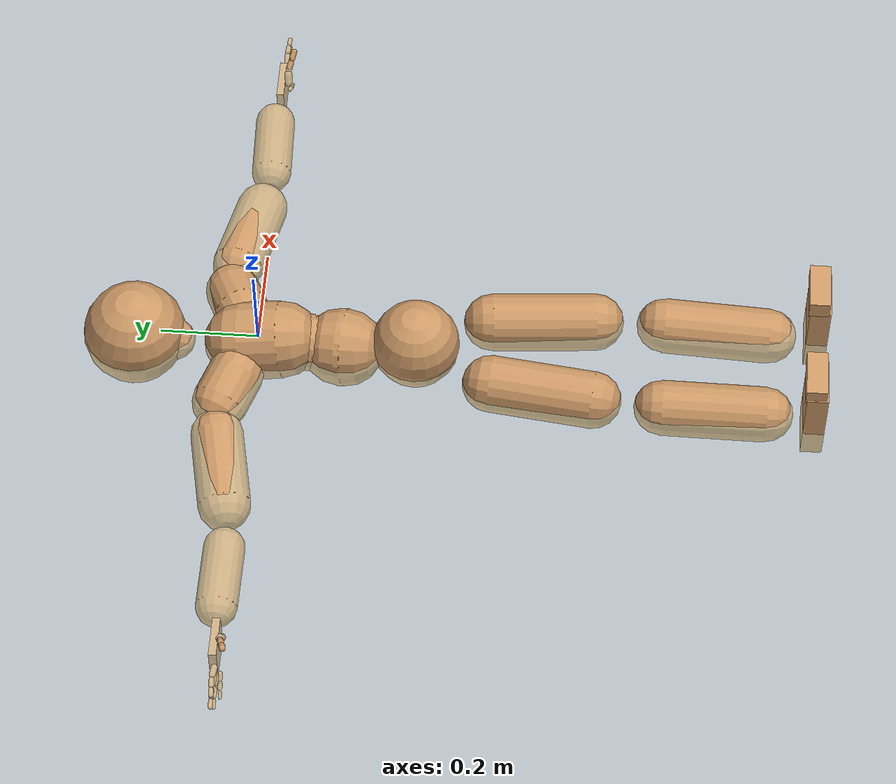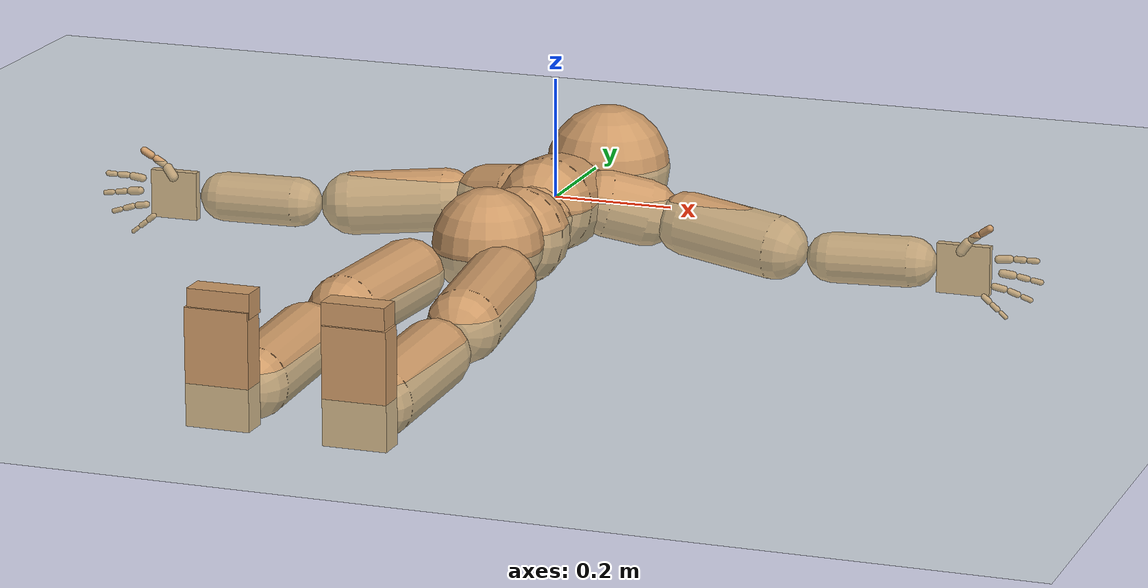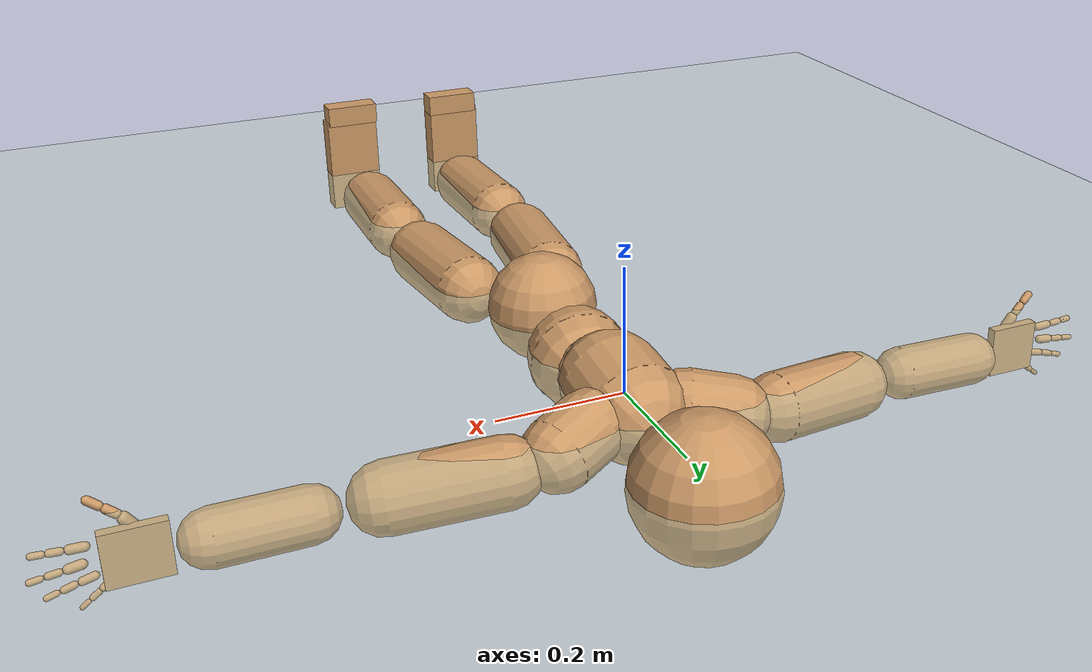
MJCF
<?xml version='1.0' encoding='utf-8'?>
<mujoco model="smplx_mapped_s99">
  <compiler coordinate="local" />
  <default>
    <joint damping="0.0" armature="0.01" stiffness="0.0" limited="true" />
    <geom conaffinity="1" condim="3" contype="7" margin="0.001" rgba="0.8 0.6 .4 1" />
  </default>
  <asset>
    <texture type="skybox" builtin="gradient" rgb1=".4 .5 .6" rgb2="0 0 0" width="100" height="100" />
    <texture builtin="flat" height="1278" mark="cross" markrgb="1 1 1" name="texgeom" random="0.01" rgb1="0.8 0.6 0.4" rgb2="0.8 0.6 0.4" type="cube" width="127" />
    <texture builtin="checker" height="100" name="texplane" rgb1="0 0 0" rgb2="0.8 0.8 0.8" type="2d" width="100" />
    <material name="MatPlane" reflectance="0.5" shininess="1" specular="1" texrepeat="60 60" texture="texplane" />
    <material name="geom" texture="texgeom" texuniform="true" />
  </asset>
  <worldbody>
    <light cutoff="100" diffuse="1 1 1" dir="-0 0 -1.3" directional="true" exponent="1" pos="0 0 1.3" specular=".1 .1 .1" />
    <geom conaffinity="1" condim="3" name="floor" pos="0 0 0" rgba="0.8 0.9 0.8 1" size="100 100 .2" type="plane" material="MatPlane" />
    <body name="Pelvis" pos="0.0006 -0.3238 0.0058">
      <freejoint name="Pelvis" />
      <geom type="sphere" contype="1" conaffinity="1" density="4629.6296296296305" size="0.09" pos="0.0000 0.0000 0.0000" name="Pelvis" />
      <body name="L_Hip" pos="0.0700 -0.0824 -0.0157">
        <joint name="L_Hip_x" type="hinge" pos="0 0 0" axis="1 0 0" stiffness="800" damping="80" armature="0.02" range="-180.00 180.00" />
        <joint name="L_Hip_y" type="hinge" pos="0 0 0" axis="0 1 0" stiffness="800" damping="80" armature="0.02" range="-180.00 180.00" />
        <joint name="L_Hip_z" type="hinge" pos="0 0 0" axis="0 0 1" stiffness="800" damping="80" armature="0.02" range="-180.00 180.00" />
        <geom type="capsule" contype="1" conaffinity="1" density="2040.816327" fromto="0.0066 -0.0704 -0.0027 0.0264 -0.2815 -0.0106" size="0.059" />
        <body name="L_Knee" pos="0.0331 -0.3518 -0.0133">
          <joint name="L_Knee_x" type="hinge" pos="0 0 0" axis="1 0 0" stiffness="800" damping="80" armature="0.02" range="-180.00 180.00" />
          <joint name="L_Knee_y" type="hinge" pos="0 0 0" axis="0 1 0" stiffness="800" damping="80" armature="0.02" range="-180.00 180.00" />
          <joint name="L_Knee_z" type="hinge" pos="0 0 0" axis="0 0 1" stiffness="800" damping="80" armature="0.02" range="-180.00 180.00" />
          <geom type="capsule" contype="1" conaffinity="1" density="1234.567901" fromto="-0.0017 -0.0721 -0.0032 -0.0069 -0.2885 -0.0129" size="0.0564" />
          <body name="L_Ankle" pos="-0.0086 -0.3606 -0.0161">
            <joint name="L_Ankle_x" type="hinge" pos="0 0 0" axis="1 0 0" stiffness="800" damping="80" armature="0.02" range="-180.00 180.00" />
            <joint name="L_Ankle_y" type="hinge" pos="0 0 0" axis="0 1 0" stiffness="800" damping="80" armature="0.02" range="-180.00 180.00" />
            <joint name="L_Ankle_z" type="hinge" pos="0 0 0" axis="0 0 1" stiffness="800" damping="80" armature="0.02" range="-180.00 180.00" />
            <geom type="box" contype="1" conaffinity="1" density="1000" pos="0.0115 -0.0234 0.0566" size="0.0502 0.0216 0.0909" quat="1.0000 0.0000 0.0000 0.0000" />
            <body name="L_Toe" pos="0.0203 -0.0424 0.1048">
              <joint name="L_Toe_x" type="hinge" pos="0 0 0" axis="1 0 0" stiffness="500" damping="50" armature="0.02" range="-180.00 180.00" />
              <joint name="L_Toe_y" type="hinge" pos="0 0 0" axis="0 1 0" stiffness="500" damping="50" armature="0.02" range="-180.00 180.00" />
              <joint name="L_Toe_z" type="hinge" pos="0 0 0" axis="0 0 1" stiffness="500" damping="50" armature="0.02" range="-180.00 180.00" />
              <geom type="box" contype="1" conaffinity="1" density="1000" pos="-0.0115 0.0227 0.0576" size="0.0493 0.0209 0.0194" quat="1.0000 0.0000 0.0000 0.0000" />
            </body>
          </body>
        </body>
      </body>
      <body name="R_Hip" pos="-0.0690 -0.0889 -0.0164">
        <joint name="R_Hip_x" type="hinge" pos="0 0 0" axis="1 0 0" stiffness="800" damping="80" armature="0.02" range="-180.00 180.00" />
        <joint name="R_Hip_y" type="hinge" pos="0 0 0" axis="0 1 0" stiffness="800" damping="80" armature="0.02" range="-180.00 180.00" />
        <joint name="R_Hip_z" type="hinge" pos="0 0 0" axis="0 0 1" stiffness="800" damping="80" armature="0.02" range="-180.00 180.00" />
        <geom type="capsule" contype="1" conaffinity="1" density="2040.816327" fromto="-0.0075 -0.0695 -0.0016 -0.0301 -0.2780 -0.0063" size="0.0588" />
        <body name="R_Knee" pos="-0.0376 -0.3476 -0.0079">
          <joint name="R_Knee_x" type="hinge" pos="0 0 0" axis="1 0 0" stiffness="800" damping="80" armature="0.02" range="-180.00 180.00" />
          <joint name="R_Knee_y" type="hinge" pos="0 0 0" axis="0 1 0" stiffness="800" damping="80" armature="0.02" range="-180.00 180.00" />
          <joint name="R_Knee_z" type="hinge" pos="0 0 0" axis="0 0 1" stiffness="800" damping="80" armature="0.02" range="-180.00 180.00" />
          <geom type="capsule" contype="1" conaffinity="1" density="1234.567901" fromto="0.0008 -0.0705 -0.0024 0.0032 -0.2818 -0.0097" size="0.0564" />
          <body name="R_Ankle" pos="0.0040 -0.3523 -0.0121">
            <joint name="R_Ankle_x" type="hinge" pos="0 0 0" axis="1 0 0" stiffness="800" damping="80" armature="0.02" range="-180.00 180.00" />
            <joint name="R_Ankle_y" type="hinge" pos="0 0 0" axis="0 1 0" stiffness="800" damping="80" armature="0.02" range="-180.00 180.00" />
            <joint name="R_Ankle_z" type="hinge" pos="0 0 0" axis="0 0 1" stiffness="800" damping="80" armature="0.02" range="-180.00 180.00" />
            <geom type="box" contype="1" conaffinity="1" density="1000" pos="-0.0091 -0.0250 0.0535" size="0.0502 0.0216 0.0909" quat="1.0000 0.0000 0.0000 0.0000" />
            <body name="R_Toe" pos="-0.0161 -0.0458 0.0984">
              <joint name="R_Toe_x" type="hinge" pos="0 0 0" axis="1 0 0" stiffness="500" damping="50" armature="0.02" range="-180.00 180.00" />
              <joint name="R_Toe_y" type="hinge" pos="0 0 0" axis="0 1 0" stiffness="500" damping="50" armature="0.02" range="-180.00 180.00" />
              <joint name="R_Toe_z" type="hinge" pos="0 0 0" axis="0 0 1" stiffness="500" damping="50" armature="0.02" range="-180.00 180.00" />
              <geom type="box" contype="1" conaffinity="1" density="1000" pos="0.0091 0.0243 0.0545" size="0.0493 0.0209 0.0194" quat="1.0000 0.0000 0.0000 0.0000" />
            </body>
          </body>
        </body>
      </body>
      <body name="Torso" pos="-0.0055 0.0941 -0.0224">
        <joint name="Torso_x" type="hinge" pos="0 0 0" axis="1 0 0" stiffness="1000" damping="100" armature="0.02" range="-180.00 180.00" />
        <joint name="Torso_y" type="hinge" pos="0 0 0" axis="0 1 0" stiffness="1000" damping="100" armature="0.02" range="-180.00 180.00" />
        <joint name="Torso_z" type="hinge" pos="0 0 0" axis="0 0 1" stiffness="1000" damping="100" armature="0.02" range="-180.00 180.00" />
        <geom type="capsule" contype="1" conaffinity="1" density="1100" fromto="0.0044 0.0500 -0.0038 0.0054 0.0611 -0.0047" size="0.08" />
        <body name="Spine" pos="0.0097 0.1112 -0.0085">
          <joint name="Spine_x" type="hinge" pos="0 0 0" axis="1 0 0" stiffness="1000" damping="100" armature="0.02" range="-180.00 180.00" />
          <joint name="Spine_y" type="hinge" pos="0 0 0" axis="0 1 0" stiffness="1000" damping="100" armature="0.02" range="-180.00 180.00" />
          <joint name="Spine_z" type="hinge" pos="0 0 0" axis="0 0 1" stiffness="1000" damping="100" armature="0.02" range="-180.00 180.00" />
          <geom type="capsule" contype="1" conaffinity="1" density="1100" fromto="-0.0022 0.0197 0.0113 -0.0027 0.0241 0.0139" size="0.06" />
          <body name="Chest" pos="-0.0048 0.0438 0.0252">
            <joint name="Chest_x" type="hinge" pos="0 0 0" axis="1 0 0" stiffness="1000" damping="100" armature="0.02" range="-180.00 180.00" />
            <joint name="Chest_y" type="hinge" pos="0 0 0" axis="0 1 0" stiffness="1000" damping="100" armature="0.02" range="-180.00 180.00" />
            <joint name="Chest_z" type="hinge" pos="0 0 0" axis="0 0 1" stiffness="1000" damping="100" armature="0.02" range="-180.00 180.00" />
            <geom type="capsule" contype="1" conaffinity="1" density="1100" fromto="-0.0007 0.0265 -0.0037 -0.0026 0.1060 -0.0148" size="0.08" />
            <body name="Neck" pos="-0.0063 0.1840 -0.0296">
              <joint name="Neck_x" type="hinge" pos="0 0 0" axis="1 0 0" stiffness="500" damping="50" armature="0.02" range="-180.00 180.00" />
              <joint name="Neck_y" type="hinge" pos="0 0 0" axis="0 1 0" stiffness="500" damping="50" armature="0.02" range="-180.00 180.00" />
              <joint name="Neck_z" type="hinge" pos="0 0 0" axis="0 0 1" stiffness="500" damping="50" armature="0.02" range="-180.00 180.00" />
              <geom type="capsule" contype="1" conaffinity="1" density="1000" fromto="0.0041 0.0659 0.0083 0.0050 0.0805 0.0101" size="0.0437" />
              <body name="Head" pos="0.0091 0.1464 0.0184">
                <joint name="Head_x" type="hinge" pos="0 0 0" axis="1 0 0" stiffness="500" damping="50" armature="0.02" range="-180.00 180.00" />
                <joint name="Head_y" type="hinge" pos="0 0 0" axis="0 1 0" stiffness="500" damping="50" armature="0.02" range="-180.00 180.00" />
                <joint name="Head_z" type="hinge" pos="0 0 0" axis="0 0 1" stiffness="500" damping="50" armature="0.02" range="-180.00 180.00" />
                <geom type="sphere" contype="1" conaffinity="1" density="1000" size="0.1054" pos="0.0000 0.0000 0.0000" name="Head" />
              </body>
            </body>
            <body name="L_Thorax" pos="0.0539 0.1087 -0.0100">
              <joint name="L_Thorax_x" type="hinge" pos="0 0 0" axis="1 0 0" stiffness="500" damping="50" armature="0.02" range="-180.00 180.00" />
              <joint name="L_Thorax_y" type="hinge" pos="0 0 0" axis="0 1 0" stiffness="500" damping="50" armature="0.02" range="-180.00 180.00" />
              <joint name="L_Thorax_z" type="hinge" pos="0 0 0" axis="0 0 1" stiffness="500" damping="50" armature="0.02" range="-180.00 180.00" />
              <geom type="capsule" contype="1" conaffinity="1" density="1000" fromto="0.0200 0.0084 -0.0056 0.0800 0.0338 -0.0223" size="0.0564" />
              <body name="L_Shoulder" pos="0.1000 0.0422 -0.0278">
                <joint name="L_Shoulder_x" type="hinge" pos="0 0 0" axis="1 0 0" stiffness="500" damping="50" armature="0.02" range="-180.00 180.00" />
                <joint name="L_Shoulder_y" type="hinge" pos="0 0 0" axis="0 1 0" stiffness="500" damping="50" armature="0.02" range="-180.00 180.00" />
                <joint name="L_Shoulder_z" type="hinge" pos="0 0 0" axis="0 0 1" stiffness="500" damping="50" armature="0.02" range="-180.00 180.00" />
                <geom type="capsule" contype="1" conaffinity="1" density="1000" fromto="0.0547 -0.0112 -0.0056 0.2187 -0.0447 -0.0224" size="0.0533" />
                <body name="L_Elbow" pos="0.2734 -0.0559 -0.0280">
                  <joint name="L_Elbow_x" type="hinge" pos="0 0 0" axis="1 0 0" stiffness="500" damping="50" armature="0.02" range="-180.00 180.00" />
                  <joint name="L_Elbow_y" type="hinge" pos="0 0 0" axis="0 1 0" stiffness="500" damping="50" armature="0.02" range="-180.00 180.00" />
                  <joint name="L_Elbow_z" type="hinge" pos="0 0 0" axis="0 0 1" stiffness="500" damping="50" armature="0.02" range="-180.00 180.00" />
                  <geom type="capsule" contype="1" conaffinity="1" density="1000" fromto="0.0445 0.0014 0.0011 0.1778 0.0056 0.0043" size="0.0418" />
                  <body name="L_Wrist" pos="0.2223 0.0070 0.0053">
                    <joint name="L_Wrist_x" type="hinge" pos="0 0 0" axis="1 0 0" stiffness="300" damping="30" armature="0.02" range="-180.0000 180.0000" />
                    <joint name="L_Wrist_y" type="hinge" pos="0 0 0" axis="0 1 0" stiffness="300" damping="30" armature="0.02" range="-180.0000 180.0000" />
                    <joint name="L_Wrist_z" type="hinge" pos="0 0 0" axis="0 0 1" stiffness="300" damping="30" armature="0.02" range="-180.0000 180.0000" />
                    <geom type="box" contype="1" conaffinity="1" density="1000" pos="0.0456 -0.0084 -0.0022" size="0.0444 0.0076 0.0414" quat="1.0000 0.0000 0.0000 0.0000" />
                    <body name="L_Index1" pos="0.0982 -0.0148 0.0204">
                      <joint name="L_Index1_x" type="hinge" pos="0 0 0" axis="1 0 0" stiffness="100" damping="10" armature="0.02" range="-5.6250 5.6250" />
                      <joint name="L_Index1_y" type="hinge" pos="0 0 0" axis="0 1 0" stiffness="100" damping="10" armature="0.02" range="-5.6250 5.6250" />
                      <joint name="L_Index1_z" type="hinge" pos="0 0 0" axis="0 0 1" stiffness="100" damping="10" armature="0.02" range="-55.6250 55.6250" />
                      <geom type="capsule" contype="1" conaffinity="1" density="1000" fromto="0.0062 0.0006 0.0006 0.0247 0.0022 0.0022" size="0.0065" />
                      <body name="L_Index2" pos="0.0308 0.0028 0.0028">
                        <joint name="L_Index2_x" type="hinge" pos="0 0 0" axis="1 0 0" stiffness="100" damping="10" armature="0.02" range="-5.6250 5.6250" />
                        <joint name="L_Index2_y" type="hinge" pos="0 0 0" axis="0 1 0" stiffness="100" damping="10" armature="0.02" range="-5.6250 5.6250" />
                        <joint name="L_Index2_z" type="hinge" pos="0 0 0" axis="0 0 1" stiffness="100" damping="10" armature="0.02" range="-55.6250 55.6250" />
                        <geom type="capsule" contype="1" conaffinity="1" density="1000" fromto="0.0044 -0.0003 0.0001 0.0174 -0.0011 0.0004" size="0.0053" />
                        <body name="L_Index3" pos="0.0218 -0.0014 0.0005">
                          <joint name="L_Index3_x" type="hinge" pos="0 0 0" axis="1 0 0" stiffness="100" damping="10" armature="0.02" range="-5.6250 5.6250" />
                          <joint name="L_Index3_y" type="hinge" pos="0 0 0" axis="0 1 0" stiffness="100" damping="10" armature="0.02" range="-5.6250 5.6250" />
                          <joint name="L_Index3_z" type="hinge" pos="0 0 0" axis="0 0 1" stiffness="100" damping="10" armature="0.02" range="-90.0000 5.6250" />
                          <geom type="capsule" contype="1" conaffinity="1" density="1000" fromto="0.0045 -0.0003 0.0001 0.0173 -0.0011 0.0004" size="0.0047" />
                        </body>
                      </body>
                    </body>
                    <body name="L_Middle1" pos="0.1049 -0.0122 -0.0016">
                      <joint name="L_Middle1_x" type="hinge" pos="0 0 0" axis="1 0 0" stiffness="100" damping="10" armature="0.02" range="-5.6250 5.6250" />
                      <joint name="L_Middle1_y" type="hinge" pos="0 0 0" axis="0 1 0" stiffness="100" damping="10" armature="0.02" range="-5.6250 5.6250" />
                      <joint name="L_Middle1_z" type="hinge" pos="0 0 0" axis="0 0 1" stiffness="100" damping="10" armature="0.02" range="-55.6250 55.6250" />
                      <geom type="capsule" contype="1" conaffinity="1" density="1000" fromto="0.0059 0.0003 -0.0007 0.0234 0.0011 -0.0028" size="0.0067" />
                      <body name="L_Middle2" pos="0.0293 0.0014 -0.0036">
                        <joint name="L_Middle2_x" type="hinge" pos="0 0 0" axis="1 0 0" stiffness="100" damping="10" armature="0.02" range="-5.6250 5.6250" />
                        <joint name="L_Middle2_y" type="hinge" pos="0 0 0" axis="0 1 0" stiffness="100" damping="10" armature="0.02" range="-5.6250 5.6250" />
                        <joint name="L_Middle2_z" type="hinge" pos="0 0 0" axis="0 0 1" stiffness="100" damping="10" armature="0.02" range="-55.6250 55.6250" />
                        <geom type="capsule" contype="1" conaffinity="1" density="1000" fromto="0.0046 -0.0001 -0.0007 0.0182 -0.0005 -0.0028" size="0.0050" />
                        <body name="L_Middle3" pos="0.0228 -0.0006 -0.0035">
                          <joint name="L_Middle3_x" type="hinge" pos="0 0 0" axis="1 0 0" stiffness="100" damping="10" armature="0.02" range="-5.6250 5.6250" />
                          <joint name="L_Middle3_y" type="hinge" pos="0 0 0" axis="0 1 0" stiffness="100" damping="10" armature="0.02" range="-5.6250 5.6250" />
                          <joint name="L_Middle3_z" type="hinge" pos="0 0 0" axis="0 0 1" stiffness="100" damping="10" armature="0.02" range="-90.0000 5.6250" />
                          <geom type="capsule" contype="1" conaffinity="1" density="1000" fromto="0.0047 -0.0001 -0.0007 0.0181 -0.0005 -0.0028" size="0.0045" />
                        </body>
                      </body>
                    </body>
                    <body name="L_Pinky1" pos="0.0800 -0.0195 -0.0401">
                      <joint name="L_Pinky1_x" type="hinge" pos="0 0 0" axis="1 0 0" stiffness="100" damping="10" armature="0.02" range="-5.6250 5.6250" />
                      <joint name="L_Pinky1_y" type="hinge" pos="0 0 0" axis="0 1 0" stiffness="100" damping="10" armature="0.02" range="-5.6250 5.6250" />
                      <joint name="L_Pinky1_z" type="hinge" pos="0 0 0" axis="0 0 1" stiffness="100" damping="10" armature="0.02" range="-55.6250 55.6250" />
                      <geom type="capsule" contype="1" conaffinity="1" density="1000" fromto="0.0029 -0.0001 -0.0024 0.0115 -0.0004 -0.0095" size="0.0050" />
                      <body name="L_Pinky2" pos="0.0143 -0.0005 -0.0119">
                        <joint name="L_Pinky2_x" type="hinge" pos="0 0 0" axis="1 0 0" stiffness="100" damping="10" armature="0.02" range="-5.6250 5.6250" />
                        <joint name="L_Pinky2_y" type="hinge" pos="0 0 0" axis="0 1 0" stiffness="100" damping="10" armature="0.02" range="-5.6250 5.6250" />
                        <joint name="L_Pinky2_z" type="hinge" pos="0 0 0" axis="0 0 1" stiffness="100" damping="10" armature="0.02" range="-55.6250 55.6250" />
                        <geom type="capsule" contype="1" conaffinity="1" density="1000" fromto="0.0029 -0.0002 -0.0023 0.0116 -0.0007 -0.0093" size="0.0045" />
                        <body name="L_Pinky3" pos="0.0145 -0.0009 -0.0116">
                          <joint name="L_Pinky3_x" type="hinge" pos="0 0 0" axis="1 0 0" stiffness="100" damping="10" armature="0.02" range="-5.6250 5.6250" />
                          <joint name="L_Pinky3_y" type="hinge" pos="0 0 0" axis="0 1 0" stiffness="100" damping="10" armature="0.02" range="-5.6250 5.6250" />
                          <joint name="L_Pinky3_z" type="hinge" pos="0 0 0" axis="0 0 1" stiffness="100" damping="10" armature="0.02" range="-90.0000 5.6250" />
                          <geom type="capsule" contype="1" conaffinity="1" density="1000" fromto="0.0031 -0.0002 -0.0025 0.0114 -0.0007 -0.0091" size="0.0036" />
                        </body>
                      </body>
                    </body>
                    <body name="L_Ring1" pos="0.0931 -0.0147 -0.0242">
                      <joint name="L_Ring1_x" type="hinge" pos="0 0 0" axis="1 0 0" stiffness="100" damping="10" armature="0.02" range="-5.6250 5.6250" />
                      <joint name="L_Ring1_y" type="hinge" pos="0 0 0" axis="0 1 0" stiffness="100" damping="10" armature="0.02" range="-5.6250 5.6250" />
                      <joint name="L_Ring1_z" type="hinge" pos="0 0 0" axis="0 0 1" stiffness="100" damping="10" armature="0.02" range="-55.6250 55.6250" />
                      <geom type="capsule" contype="1" conaffinity="1" density="1000" fromto="0.0054 0.0003 -0.0010 0.0215 0.0013 -0.0041" size="0.0057" />
                      <body name="L_Ring2" pos="0.0268 0.0016 -0.0052">
                        <joint name="L_Ring2_x" type="hinge" pos="0 0 0" axis="1 0 0" stiffness="100" damping="10" armature="0.02" range="-5.6250 5.6250" />
                        <joint name="L_Ring2_y" type="hinge" pos="0 0 0" axis="0 1 0" stiffness="100" damping="10" armature="0.02" range="-5.6250 5.6250" />
                        <joint name="L_Ring2_z" type="hinge" pos="0 0 0" axis="0 0 1" stiffness="100" damping="10" armature="0.02" range="-55.6250 55.6250" />
                        <geom type="capsule" contype="1" conaffinity="1" density="1000" fromto="0.0044 -0.0002 -0.0014 0.0176 -0.0008 -0.0056" size="0.0051" />
                        <body name="L_Ring3" pos="0.0219 -0.0010 -0.0070">
                          <joint name="L_Ring3_x" type="hinge" pos="0 0 0" axis="1 0 0" stiffness="100" damping="10" armature="0.02" range="-5.6250 5.6250" />
                          <joint name="L_Ring3_y" type="hinge" pos="0 0 0" axis="0 1 0" stiffness="100" damping="10" armature="0.02" range="-5.6250 5.6250" />
                          <joint name="L_Ring3_z" type="hinge" pos="0 0 0" axis="0 0 1" stiffness="100" damping="10" armature="0.02" range="-90.0000 5.6250" />
                          <geom type="capsule" contype="1" conaffinity="1" density="1000" fromto="0.0046 -0.0002 -0.0015 0.0174 -0.0008 -0.0056" size="0.0043" />
                        </body>
                      </body>
                    </body>
                    <body name="L_Thumb1" pos="0.0405 -0.0226 0.0263">
                      <joint name="L_Thumb1_x" type="hinge" pos="0 0 0" axis="1 0 0" stiffness="100" damping="10" armature="0.02" range="-55.6250 55.6250" />
                      <joint name="L_Thumb1_y" type="hinge" pos="0 0 0" axis="0 1 0" stiffness="100" damping="10" armature="0.02" range="-55.6250 55.6250" />
                      <joint name="L_Thumb1_z" type="hinge" pos="0 0 0" axis="0 0 1" stiffness="100" damping="10" armature="0.02" range="-55.6250 55.6250" />
                      <geom type="capsule" contype="1" conaffinity="1" density="1000" fromto="0.0033 0.0002 0.0047 0.0133 0.0008 0.0188" size="0.0086" />
                      <body name="L_Thumb2" pos="0.0166 0.0010 0.0235">
                        <joint name="L_Thumb2_x" type="hinge" pos="0 0 0" axis="1 0 0" stiffness="100" damping="10" armature="0.02" range="-5.6250 5.6250" />
                        <joint name="L_Thumb2_y" type="hinge" pos="0 0 0" axis="0 1 0" stiffness="100" damping="10" armature="0.02" range="-5.6250 5.6250" />
                        <joint name="L_Thumb2_z" type="hinge" pos="0 0 0" axis="0 0 1" stiffness="100" damping="10" armature="0.02" range="-5.6250 5.6250" />
                        <geom type="capsule" contype="1" conaffinity="1" density="1000" fromto="0.0039 -0.0011 0.0028 0.0157 -0.0046 0.0112" size="0.0065" />
                        <body name="L_Thumb3" pos="0.0196 -0.0057 0.0141">
                          <joint name="L_Thumb3_x" type="hinge" pos="0 0 0" axis="1 0 0" stiffness="100" damping="10" armature="0.02" range="-5.6250 5.6250" />
                          <joint name="L_Thumb3_y" type="hinge" pos="0 0 0" axis="0 1 0" stiffness="100" damping="10" armature="0.02" range="-5.6250 5.6250" />
                          <joint name="L_Thumb3_z" type="hinge" pos="0 0 0" axis="0 0 1" stiffness="100" damping="10" armature="0.02" range="-90.0000 5.6250" />
                          <geom type="capsule" contype="1" conaffinity="1" density="1000" fromto="0.0032 -0.0009 0.0023 0.0164 -0.0048 0.0117" size="0.0062" />
                        </body>
                      </body>
                    </body>
                  </body>
                </body>
              </body>
            </body>
            <body name="R_Thorax" pos="-0.0576 0.1049 -0.0160">
              <joint name="R_Thorax_x" type="hinge" pos="0 0 0" axis="1 0 0" stiffness="500" damping="50" armature="0.02" range="-180.00 180.00" />
              <joint name="R_Thorax_y" type="hinge" pos="0 0 0" axis="0 1 0" stiffness="500" damping="50" armature="0.02" range="-180.00 180.00" />
              <joint name="R_Thorax_z" type="hinge" pos="0 0 0" axis="0 0 1" stiffness="500" damping="50" armature="0.02" range="-180.00 180.00" />
              <geom type="capsule" contype="1" conaffinity="1" density="1000" fromto="-0.0217 0.0090 -0.0043 -0.0866 0.0359 -0.0170" size="0.0576" />
              <body name="R_Shoulder" pos="-0.1083 0.0449 -0.0213">
                <joint name="R_Shoulder_x" type="hinge" pos="0 0 0" axis="1 0 0" stiffness="500" damping="50" armature="0.02" range="-180.00 180.00" />
                <joint name="R_Shoulder_y" type="hinge" pos="0 0 0" axis="0 1 0" stiffness="500" damping="50" armature="0.02" range="-180.00 180.00" />
                <joint name="R_Shoulder_z" type="hinge" pos="0 0 0" axis="0 0 1" stiffness="500" damping="50" armature="0.02" range="-180.00 180.00" />
                <geom type="capsule" contype="1" conaffinity="1" density="1000" fromto="-0.0524 -0.0103 -0.0042 -0.2096 -0.0410 -0.0167" size="0.0538" />
                <body name="R_Elbow" pos="-0.2620 -0.0513 -0.0209">
                  <joint name="R_Elbow_x" type="hinge" pos="0 0 0" axis="1 0 0" stiffness="500" damping="50" armature="0.02" range="-180.00 180.00" />
                  <joint name="R_Elbow_y" type="hinge" pos="0 0 0" axis="0 1 0" stiffness="500" damping="50" armature="0.02" range="-180.00 180.00" />
                  <joint name="R_Elbow_z" type="hinge" pos="0 0 0" axis="0 0 1" stiffness="500" damping="50" armature="0.02" range="-180.00 180.00" />
                  <geom type="capsule" contype="1" conaffinity="1" density="1000" fromto="-0.0446 0.0005 -0.0007 -0.1784 0.0022 -0.0030" size="0.042" />
                  <body name="R_Wrist" pos="-0.2230 0.0027 -0.0037">
                    <joint name="R_Wrist_x" type="hinge" pos="0 0 0" axis="1 0 0" stiffness="300" damping="30" armature="0.02" range="-180.0000 180.0000" />
                    <joint name="R_Wrist_y" type="hinge" pos="0 0 0" axis="0 1 0" stiffness="300" damping="30" armature="0.02" range="-180.0000 180.0000" />
                    <joint name="R_Wrist_z" type="hinge" pos="0 0 0" axis="0 0 1" stiffness="300" damping="30" armature="0.02" range="-180.0000 180.0000" />
                    <geom type="box" contype="1" conaffinity="1" density="1000" pos="-0.0449 -0.0080 -0.0014" size="0.0416 0.0078 0.0414" quat="1.0000 0.0000 0.0000 0.0000" />
                    <body name="R_Index1" pos="-0.0971 -0.0139 0.0219">
                      <joint name="R_Index1_x" type="hinge" pos="0 0 0" axis="1 0 0" stiffness="100" damping="10" armature="0.02" range="-5.6250 5.6250" />
                      <joint name="R_Index1_y" type="hinge" pos="0 0 0" axis="0 1 0" stiffness="100" damping="10" armature="0.02" range="-5.6250 5.6250" />
                      <joint name="R_Index1_z" type="hinge" pos="0 0 0" axis="0 0 1" stiffness="100" damping="10" armature="0.02" range="-55.6250 55.6250" />
                      <geom type="capsule" contype="1" conaffinity="1" density="1000" fromto="-0.0062 0.0006 0.0006 -0.0247 0.0022 0.0022" size="0.0065" />
                      <body name="R_Index2" pos="-0.0308 0.0028 0.0028">
                        <joint name="R_Index2_x" type="hinge" pos="0 0 0" axis="1 0 0" stiffness="100" damping="10" armature="0.02" range="-5.6250 5.6250" />
                        <joint name="R_Index2_y" type="hinge" pos="0 0 0" axis="0 1 0" stiffness="100" damping="10" armature="0.02" range="-5.6250 5.6250" />
                        <joint name="R_Index2_z" type="hinge" pos="0 0 0" axis="0 0 1" stiffness="100" damping="10" armature="0.02" range="-55.6250 55.6250" />
                        <geom type="capsule" contype="1" conaffinity="1" density="1000" fromto="-0.0044 -0.0003 0.0001 -0.0174 -0.0011 0.0004" size="0.0053" />
                        <body name="R_Index3" pos="-0.0218 -0.0014 0.0005">
                          <joint name="R_Index3_x" type="hinge" pos="0 0 0" axis="1 0 0" stiffness="100" damping="10" armature="0.02" range="-5.6250 5.6250" />
                          <joint name="R_Index3_y" type="hinge" pos="0 0 0" axis="0 1 0" stiffness="100" damping="10" armature="0.02" range="-5.6250 5.6250" />
                          <joint name="R_Index3_z" type="hinge" pos="0 0 0" axis="0 0 1" stiffness="100" damping="10" armature="0.02" range="-5.6250 90.0000" />
                          <geom type="capsule" contype="1" conaffinity="1" density="1000" fromto="-0.0049 -0.0003 0.0001 -0.0169 -0.0011 0.0004" size="0.0048" />
                        </body>
                      </body>
                    </body>
                    <body name="R_Middle1" pos="-0.1038 -0.0114 -0.0001">
                      <joint name="R_Middle1_x" type="hinge" pos="0 0 0" axis="1 0 0" stiffness="100" damping="10" armature="0.02" range="-5.6250 5.6250" />
                      <joint name="R_Middle1_y" type="hinge" pos="0 0 0" axis="0 1 0" stiffness="100" damping="10" armature="0.02" range="-5.6250 5.6250" />
                      <joint name="R_Middle1_z" type="hinge" pos="0 0 0" axis="0 0 1" stiffness="100" damping="10" armature="0.02" range="-55.6250 55.6250" />
                      <geom type="capsule" contype="1" conaffinity="1" density="1000" fromto="-0.0059 0.0003 -0.0007 -0.0234 0.0011 -0.0028" size="0.0067" />
                      <body name="R_Middle2" pos="-0.0293 0.0014 -0.0036">
                        <joint name="R_Middle2_x" type="hinge" pos="0 0 0" axis="1 0 0" stiffness="100" damping="10" armature="0.02" range="-5.6250 5.6250" />
                        <joint name="R_Middle2_y" type="hinge" pos="0 0 0" axis="0 1 0" stiffness="100" damping="10" armature="0.02" range="-5.6250 5.6250" />
                        <joint name="R_Middle2_z" type="hinge" pos="0 0 0" axis="0 0 1" stiffness="100" damping="10" armature="0.02" range="-55.6250 55.6250" />
                        <geom type="capsule" contype="1" conaffinity="1" density="1000" fromto="-0.0046 -0.0001 -0.0007 -0.0182 -0.0005 -0.0028" size="0.0050" />
                        <body name="R_Middle3" pos="-0.0228 -0.0006 -0.0035">
                          <joint name="R_Middle3_x" type="hinge" pos="0 0 0" axis="1 0 0" stiffness="100" damping="10" armature="0.02" range="-5.6250 5.6250" />
                          <joint name="R_Middle3_y" type="hinge" pos="0 0 0" axis="0 1 0" stiffness="100" damping="10" armature="0.02" range="-5.6250 5.6250" />
                          <joint name="R_Middle3_z" type="hinge" pos="0 0 0" axis="0 0 1" stiffness="100" damping="10" armature="0.02" range="-5.6250 90.0000" />
                          <geom type="capsule" contype="1" conaffinity="1" density="1000" fromto="-0.0050 -0.0001 -0.0008 -0.0177 -0.0005 -0.0027" size="0.0045" />
                        </body>
                      </body>
                    </body>
                    <body name="R_Pinky1" pos="-0.0789 -0.0187 -0.0386">
                      <joint name="R_Pinky1_x" type="hinge" pos="0 0 0" axis="1 0 0" stiffness="100" damping="10" armature="0.02" range="-5.6250 5.6250" />
                      <joint name="R_Pinky1_y" type="hinge" pos="0 0 0" axis="0 1 0" stiffness="100" damping="10" armature="0.02" range="-5.6250 5.6250" />
                      <joint name="R_Pinky1_z" type="hinge" pos="0 0 0" axis="0 0 1" stiffness="100" damping="10" armature="0.02" range="-55.6250 55.6250" />
                      <geom type="capsule" contype="1" conaffinity="1" density="1000" fromto="-0.0029 -0.0001 -0.0024 -0.0115 -0.0004 -0.0095" size="0.0050" />
                      <body name="R_Pinky2" pos="-0.0143 -0.0005 -0.0119">
                        <joint name="R_Pinky2_x" type="hinge" pos="0 0 0" axis="1 0 0" stiffness="100" damping="10" armature="0.02" range="-5.6250 5.6250" />
                        <joint name="R_Pinky2_y" type="hinge" pos="0 0 0" axis="0 1 0" stiffness="100" damping="10" armature="0.02" range="-5.6250 5.6250" />
                        <joint name="R_Pinky2_z" type="hinge" pos="0 0 0" axis="0 0 1" stiffness="100" damping="10" armature="0.02" range="-55.6250 55.6250" />
                        <geom type="capsule" contype="1" conaffinity="1" density="1000" fromto="-0.0029 -0.0002 -0.0023 -0.0116 -0.0007 -0.0093" size="0.0045" />
                        <body name="R_Pinky3" pos="-0.0145 -0.0009 -0.0116">
                          <joint name="R_Pinky3_x" type="hinge" pos="0 0 0" axis="1 0 0" stiffness="100" damping="10" armature="0.02" range="-5.6250 5.6250" />
                          <joint name="R_Pinky3_y" type="hinge" pos="0 0 0" axis="0 1 0" stiffness="100" damping="10" armature="0.02" range="-5.6250 5.6250" />
                          <joint name="R_Pinky3_z" type="hinge" pos="0 0 0" axis="0 0 1" stiffness="100" damping="10" armature="0.02" range="-5.6250 90.0000" />
                          <geom type="capsule" contype="1" conaffinity="1" density="1000" fromto="-0.0033 -0.0002 -0.0026 -0.0112 -0.0007 -0.0089" size="0.0036" />
                        </body>
                      </body>
                    </body>
                    <body name="R_Ring1" pos="-0.0920 -0.0138 -0.0227">
                      <joint name="R_Ring1_x" type="hinge" pos="0 0 0" axis="1 0 0" stiffness="100" damping="10" armature="0.02" range="-5.6250 5.6250" />
                      <joint name="R_Ring1_y" type="hinge" pos="0 0 0" axis="0 1 0" stiffness="100" damping="10" armature="0.02" range="-5.6250 5.6250" />
                      <joint name="R_Ring1_z" type="hinge" pos="0 0 0" axis="0 0 1" stiffness="100" damping="10" armature="0.02" range="-55.6250 55.6250" />
                      <geom type="capsule" contype="1" conaffinity="1" density="1000" fromto="-0.0054 0.0003 -0.0010 -0.0215 0.0013 -0.0041" size="0.0057" />
                      <body name="R_Ring2" pos="-0.0268 0.0016 -0.0052">
                        <joint name="R_Ring2_x" type="hinge" pos="0 0 0" axis="1 0 0" stiffness="100" damping="10" armature="0.02" range="-5.6250 5.6250" />
                        <joint name="R_Ring2_y" type="hinge" pos="0 0 0" axis="0 1 0" stiffness="100" damping="10" armature="0.02" range="-5.6250 5.6250" />
                        <joint name="R_Ring2_z" type="hinge" pos="0 0 0" axis="0 0 1" stiffness="100" damping="10" armature="0.02" range="-55.6250 55.6250" />
                        <geom type="capsule" contype="1" conaffinity="1" density="1000" fromto="-0.0044 -0.0002 -0.0014 -0.0176 -0.0008 -0.0056" size="0.0051" />
                        <body name="R_Ring3" pos="-0.0219 -0.0010 -0.0070">
                          <joint name="R_Ring3_x" type="hinge" pos="0 0 0" axis="1 0 0" stiffness="100" damping="10" armature="0.02" range="-5.6250 5.6250" />
                          <joint name="R_Ring3_y" type="hinge" pos="0 0 0" axis="0 1 0" stiffness="100" damping="10" armature="0.02" range="-5.6250 5.6250" />
                          <joint name="R_Ring3_z" type="hinge" pos="0 0 0" axis="0 0 1" stiffness="100" damping="10" armature="0.02" range="-5.6250 90.0000" />
                          <geom type="capsule" contype="1" conaffinity="1" density="1000" fromto="-0.0048 -0.0002 -0.0015 -0.0171 -0.0008 -0.0055" size="0.0043" />
                        </body>
                      </body>
                    </body>
                    <body name="R_Thumb1" pos="-0.0394 -0.0217 0.0278">
                      <joint name="R_Thumb1_x" type="hinge" pos="0 0 0" axis="1 0 0" stiffness="100" damping="10" armature="0.02" range="-55.6250 55.6250" />
                      <joint name="R_Thumb1_y" type="hinge" pos="0 0 0" axis="0 1 0" stiffness="100" damping="10" armature="0.02" range="-55.6250 55.6250" />
                      <joint name="R_Thumb1_z" type="hinge" pos="0 0 0" axis="0 0 1" stiffness="100" damping="10" armature="0.02" range="-55.6250 55.6250" />
                      <geom type="capsule" contype="1" conaffinity="1" density="1000" fromto="-0.0033 0.0002 0.0047 -0.0133 0.0008 0.0188" size="0.0086" />
                      <body name="R_Thumb2" pos="-0.0166 0.0010 0.0235">
                        <joint name="R_Thumb2_x" type="hinge" pos="0 0 0" axis="1 0 0" stiffness="100" damping="10" armature="0.02" range="-5.6250 5.6250" />
                        <joint name="R_Thumb2_y" type="hinge" pos="0 0 0" axis="0 1 0" stiffness="100" damping="10" armature="0.02" range="-5.6250 5.6250" />
                        <joint name="R_Thumb2_z" type="hinge" pos="0 0 0" axis="0 0 1" stiffness="100" damping="10" armature="0.02" range="-5.6250 5.6250" />
                        <geom type="capsule" contype="1" conaffinity="1" density="1000" fromto="-0.0039 -0.0011 0.0028 -0.0157 -0.0046 0.0112" size="0.0065" />
                        <body name="R_Thumb3" pos="-0.0196 -0.0057 0.0141">
                          <joint name="R_Thumb3_x" type="hinge" pos="0 0 0" axis="1 0 0" stiffness="100" damping="10" armature="0.02" range="-5.6250 5.6250" />
                          <joint name="R_Thumb3_y" type="hinge" pos="0 0 0" axis="0 1 0" stiffness="100" damping="10" armature="0.02" range="-5.6250 5.6250" />
                          <joint name="R_Thumb3_z" type="hinge" pos="0 0 0" axis="0 0 1" stiffness="100" damping="10" armature="0.02" range="-5.6250 90.0000" />
                          <geom type="capsule" contype="1" conaffinity="1" density="1000" fromto="-0.0041 -0.0012 0.0029 -0.0155 -0.0045 0.0111" size="0.0064" />
                        </body>
                      </body>
                    </body>
                  </body>
                </body>
              </body>
            </body>
          </body>
        </body>
      </body>
    </body>
  </worldbody>
  <actuator>
    <motor name="L_Hip_x" joint="L_Hip_x" gear="1" />
    <motor name="L_Hip_y" joint="L_Hip_y" gear="1" />
    <motor name="L_Hip_z" joint="L_Hip_z" gear="1" />
    <motor name="L_Knee_x" joint="L_Knee_x" gear="1" />
    <motor name="L_Knee_y" joint="L_Knee_y" gear="1" />
    <motor name="L_Knee_z" joint="L_Knee_z" gear="1" />
    <motor name="L_Ankle_x" joint="L_Ankle_x" gear="1" />
    <motor name="L_Ankle_y" joint="L_Ankle_y" gear="1" />
    <motor name="L_Ankle_z" joint="L_Ankle_z" gear="1" />
    <motor name="L_Toe_x" joint="L_Toe_x" gear="1" />
    <motor name="L_Toe_y" joint="L_Toe_y" gear="1" />
    <motor name="L_Toe_z" joint="L_Toe_z" gear="1" />
    <motor name="R_Hip_x" joint="R_Hip_x" gear="1" />
    <motor name="R_Hip_y" joint="R_Hip_y" gear="1" />
    <motor name="R_Hip_z" joint="R_Hip_z" gear="1" />
    <motor name="R_Knee_x" joint="R_Knee_x" gear="1" />
    <motor name="R_Knee_y" joint="R_Knee_y" gear="1" />
    <motor name="R_Knee_z" joint="R_Knee_z" gear="1" />
    <motor name="R_Ankle_x" joint="R_Ankle_x" gear="1" />
    <motor name="R_Ankle_y" joint="R_Ankle_y" gear="1" />
    <motor name="R_Ankle_z" joint="R_Ankle_z" gear="1" />
    <motor name="R_Toe_x" joint="R_Toe_x" gear="1" />
    <motor name="R_Toe_y" joint="R_Toe_y" gear="1" />
    <motor name="R_Toe_z" joint="R_Toe_z" gear="1" />
    <motor name="Torso_x" joint="Torso_x" gear="1" />
    <motor name="Torso_y" joint="Torso_y" gear="1" />
    <motor name="Torso_z" joint="Torso_z" gear="1" />
    <motor name="Spine_x" joint="Spine_x" gear="1" />
    <motor name="Spine_y" joint="Spine_y" gear="1" />
    <motor name="Spine_z" joint="Spine_z" gear="1" />
    <motor name="Chest_x" joint="Chest_x" gear="1" />
    <motor name="Chest_y" joint="Chest_y" gear="1" />
    <motor name="Chest_z" joint="Chest_z" gear="1" />
    <motor name="Neck_x" joint="Neck_x" gear="1" />
    <motor name="Neck_y" joint="Neck_y" gear="1" />
    <motor name="Neck_z" joint="Neck_z" gear="1" />
    <motor name="Head_x" joint="Head_x" gear="1" />
    <motor name="Head_y" joint="Head_y" gear="1" />
    <motor name="Head_z" joint="Head_z" gear="1" />
    <motor name="L_Thorax_x" joint="L_Thorax_x" gear="1" />
    <motor name="L_Thorax_y" joint="L_Thorax_y" gear="1" />
    <motor name="L_Thorax_z" joint="L_Thorax_z" gear="1" />
    <motor name="L_Shoulder_x" joint="L_Shoulder_x" gear="1" />
    <motor name="L_Shoulder_y" joint="L_Shoulder_y" gear="1" />
    <motor name="L_Shoulder_z" joint="L_Shoulder_z" gear="1" />
    <motor name="L_Elbow_x" joint="L_Elbow_x" gear="1" />
    <motor name="L_Elbow_y" joint="L_Elbow_y" gear="1" />
    <motor name="L_Elbow_z" joint="L_Elbow_z" gear="1" />
    <motor name="L_Wrist_x" joint="L_Wrist_x" gear="1" />
    <motor name="L_Wrist_y" joint="L_Wrist_y" gear="1" />
    <motor name="L_Wrist_z" joint="L_Wrist_z" gear="1" />
    <motor name="L_Index1_x" joint="L_Index1_x" gear="1" />
    <motor name="L_Index1_y" joint="L_Index1_y" gear="1" />
    <motor name="L_Index1_z" joint="L_Index1_z" gear="1" />
    <motor name="L_Index2_x" joint="L_Index2_x" gear="1" />
    <motor name="L_Index2_y" joint="L_Index2_y" gear="1" />
    <motor name="L_Index2_z" joint="L_Index2_z" gear="1" />
    <motor name="L_Index3_x" joint="L_Index3_x" gear="1" />
    <motor name="L_Index3_y" joint="L_Index3_y" gear="1" />
    <motor name="L_Index3_z" joint="L_Index3_z" gear="1" />
    <motor name="L_Middle1_x" joint="L_Middle1_x" gear="1" />
    <motor name="L_Middle1_y" joint="L_Middle1_y" gear="1" />
    <motor name="L_Middle1_z" joint="L_Middle1_z" gear="1" />
    <motor name="L_Middle2_x" joint="L_Middle2_x" gear="1" />
    <motor name="L_Middle2_y" joint="L_Middle2_y" gear="1" />
    <motor name="L_Middle2_z" joint="L_Middle2_z" gear="1" />
    <motor name="L_Middle3_x" joint="L_Middle3_x" gear="1" />
    <motor name="L_Middle3_y" joint="L_Middle3_y" gear="1" />
    <motor name="L_Middle3_z" joint="L_Middle3_z" gear="1" />
    <motor name="L_Pinky1_x" joint="L_Pinky1_x" gear="1" />
    <motor name="L_Pinky1_y" joint="L_Pinky1_y" gear="1" />
    <motor name="L_Pinky1_z" joint="L_Pinky1_z" gear="1" />
    <motor name="L_Pinky2_x" joint="L_Pinky2_x" gear="1" />
    <motor name="L_Pinky2_y" joint="L_Pinky2_y" gear="1" />
    <motor name="L_Pinky2_z" joint="L_Pinky2_z" gear="1" />
    <motor name="L_Pinky3_x" joint="L_Pinky3_x" gear="1" />
    <motor name="L_Pinky3_y" joint="L_Pinky3_y" gear="1" />
    <motor name="L_Pinky3_z" joint="L_Pinky3_z" gear="1" />
    <motor name="L_Ring1_x" joint="L_Ring1_x" gear="1" />
    <motor name="L_Ring1_y" joint="L_Ring1_y" gear="1" />
    <motor name="L_Ring1_z" joint="L_Ring1_z" gear="1" />
    <motor name="L_Ring2_x" joint="L_Ring2_x" gear="1" />
    <motor name="L_Ring2_y" joint="L_Ring2_y" gear="1" />
    <motor name="L_Ring2_z" joint="L_Ring2_z" gear="1" />
    <motor name="L_Ring3_x" joint="L_Ring3_x" gear="1" />
    <motor name="L_Ring3_y" joint="L_Ring3_y" gear="1" />
    <motor name="L_Ring3_z" joint="L_Ring3_z" gear="1" />
    <motor name="L_Thumb1_x" joint="L_Thumb1_x" gear="1" />
    <motor name="L_Thumb1_y" joint="L_Thumb1_y" gear="1" />
    <motor name="L_Thumb1_z" joint="L_Thumb1_z" gear="1" />
    <motor name="L_Thumb2_x" joint="L_Thumb2_x" gear="1" />
    <motor name="L_Thumb2_y" joint="L_Thumb2_y" gear="1" />
    <motor name="L_Thumb2_z" joint="L_Thumb2_z" gear="1" />
    <motor name="L_Thumb3_x" joint="L_Thumb3_x" gear="1" />
    <motor name="L_Thumb3_y" joint="L_Thumb3_y" gear="1" />
    <motor name="L_Thumb3_z" joint="L_Thumb3_z" gear="1" />
    <motor name="R_Thorax_x" joint="R_Thorax_x" gear="1" />
    <motor name="R_Thorax_y" joint="R_Thorax_y" gear="1" />
    <motor name="R_Thorax_z" joint="R_Thorax_z" gear="1" />
    <motor name="R_Shoulder_x" joint="R_Shoulder_x" gear="1" />
    <motor name="R_Shoulder_y" joint="R_Shoulder_y" gear="1" />
    <motor name="R_Shoulder_z" joint="R_Shoulder_z" gear="1" />
    <motor name="R_Elbow_x" joint="R_Elbow_x" gear="1" />
    <motor name="R_Elbow_y" joint="R_Elbow_y" gear="1" />
    <motor name="R_Elbow_z" joint="R_Elbow_z" gear="1" />
    <motor name="R_Wrist_x" joint="R_Wrist_x" gear="1" />
    <motor name="R_Wrist_y" joint="R_Wrist_y" gear="1" />
    <motor name="R_Wrist_z" joint="R_Wrist_z" gear="1" />
    <motor name="R_Index1_x" joint="R_Index1_x" gear="1" />
    <motor name="R_Index1_y" joint="R_Index1_y" gear="1" />
    <motor name="R_Index1_z" joint="R_Index1_z" gear="1" />
    <motor name="R_Index2_x" joint="R_Index2_x" gear="1" />
    <motor name="R_Index2_y" joint="R_Index2_y" gear="1" />
    <motor name="R_Index2_z" joint="R_Index2_z" gear="1" />
    <motor name="R_Index3_x" joint="R_Index3_x" gear="1" />
    <motor name="R_Index3_y" joint="R_Index3_y" gear="1" />
    <motor name="R_Index3_z" joint="R_Index3_z" gear="1" />
    <motor name="R_Middle1_x" joint="R_Middle1_x" gear="1" />
    <motor name="R_Middle1_y" joint="R_Middle1_y" gear="1" />
    <motor name="R_Middle1_z" joint="R_Middle1_z" gear="1" />
    <motor name="R_Middle2_x" joint="R_Middle2_x" gear="1" />
    <motor name="R_Middle2_y" joint="R_Middle2_y" gear="1" />
    <motor name="R_Middle2_z" joint="R_Middle2_z" gear="1" />
    <motor name="R_Middle3_x" joint="R_Middle3_x" gear="1" />
    <motor name="R_Middle3_y" joint="R_Middle3_y" gear="1" />
    <motor name="R_Middle3_z" joint="R_Middle3_z" gear="1" />
    <motor name="R_Pinky1_x" joint="R_Pinky1_x" gear="1" />
    <motor name="R_Pinky1_y" joint="R_Pinky1_y" gear="1" />
    <motor name="R_Pinky1_z" joint="R_Pinky1_z" gear="1" />
    <motor name="R_Pinky2_x" joint="R_Pinky2_x" gear="1" />
    <motor name="R_Pinky2_y" joint="R_Pinky2_y" gear="1" />
    <motor name="R_Pinky2_z" joint="R_Pinky2_z" gear="1" />
    <motor name="R_Pinky3_x" joint="R_Pinky3_x" gear="1" />
    <motor name="R_Pinky3_y" joint="R_Pinky3_y" gear="1" />
    <motor name="R_Pinky3_z" joint="R_Pinky3_z" gear="1" />
    <motor name="R_Ring1_x" joint="R_Ring1_x" gear="1" />
    <motor name="R_Ring1_y" joint="R_Ring1_y" gear="1" />
    <motor name="R_Ring1_z" joint="R_Ring1_z" gear="1" />
    <motor name="R_Ring2_x" joint="R_Ring2_x" gear="1" />
    <motor name="R_Ring2_y" joint="R_Ring2_y" gear="1" />
    <motor name="R_Ring2_z" joint="R_Ring2_z" gear="1" />
    <motor name="R_Ring3_x" joint="R_Ring3_x" gear="1" />
    <motor name="R_Ring3_y" joint="R_Ring3_y" gear="1" />
    <motor name="R_Ring3_z" joint="R_Ring3_z" gear="1" />
    <motor name="R_Thumb1_x" joint="R_Thumb1_x" gear="1" />
    <motor name="R_Thumb1_y" joint="R_Thumb1_y" gear="1" />
    <motor name="R_Thumb1_z" joint="R_Thumb1_z" gear="1" />
    <motor name="R_Thumb2_x" joint="R_Thumb2_x" gear="1" />
    <motor name="R_Thumb2_y" joint="R_Thumb2_y" gear="1" />
    <motor name="R_Thumb2_z" joint="R_Thumb2_z" gear="1" />
    <motor name="R_Thumb3_x" joint="R_Thumb3_x" gear="1" />
    <motor name="R_Thumb3_y" joint="R_Thumb3_y" gear="1" />
    <motor name="R_Thumb3_z" joint="R_Thumb3_z" gear="1" />
  </actuator>
  <contact />
  <sensor />
  <size njmax="700" nconmax="700" />
</mujoco>
